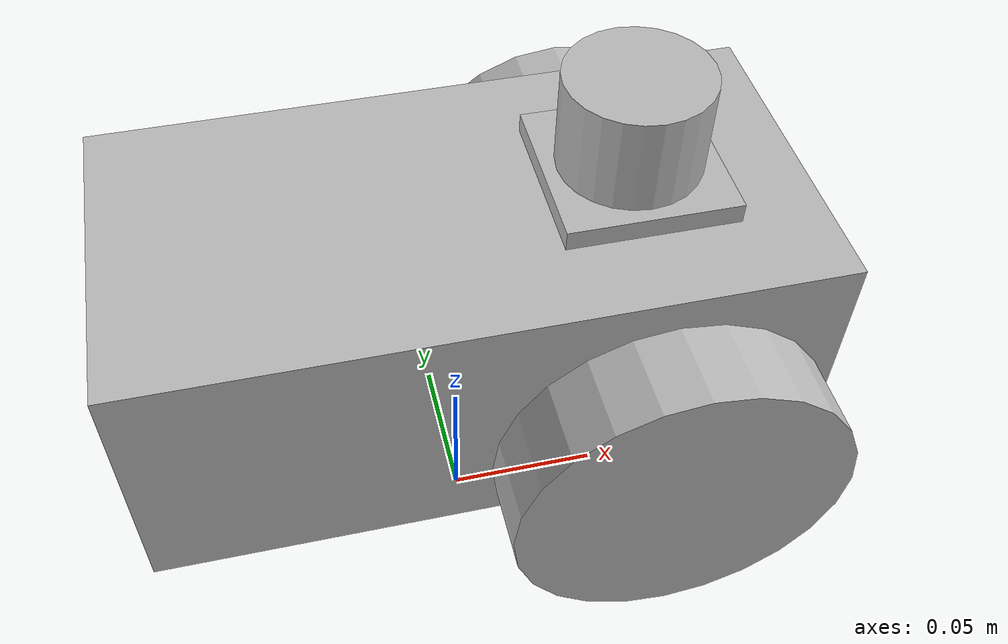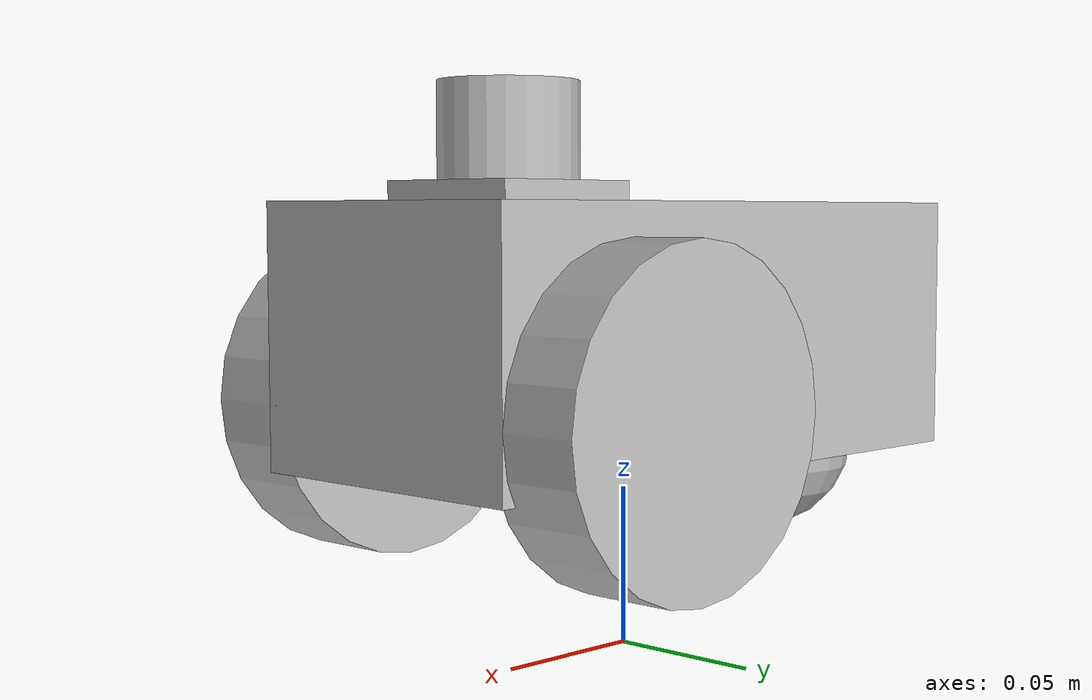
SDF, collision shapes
<?xml version='1.0'?>
<sdf version='1.4'>
	<model name="myrobot">
		<static>false</static>
		<link name='base_link'>
			<pose>0.0 0.0 0.1 0 0.0 0.0</pose>

			<visual name='visual'>
				<pose>0.0 0.0 0.0 0.0 0.0 0.0</pose>
				<geometry>
					<box>
						<size>0.2 0.1 0.08</size>
					</box>
				</geometry>
			</visual>

			<collision name='collision'>
				<geometry>
					<box>
						<size>0.2 0.1 0.08</size>
					</box>
				</geometry>
			</collision>

			<inertial>
				<mass>10.0</mass>
				<pose>0.0 0.0 0.04 0.0 0.0 0.0</pose>
				<inertia>
					<ixx>0.5</ixx>
					<iyy>1.0</iyy>
					<izz>0.1</izz>
				</inertia>
			</inertial>

			<visual name='caster_visual'>
				<pose> -0.07 0.0 -0.04 0.0 0.0 0.0</pose>
				<geometry>
					<sphere>
						<radius>0.03</radius>
					</sphere>
				</geometry>
			</visual>

			<collision name='caster_collision'>
				<pose>-0.07 0.0 -0.04 0.0 0.0 0.0</pose>
				<geometry>
					<sphere>
						<radius>.03</radius>
					</sphere>
				</geometry>

				<surface>
					<friction>
						<ode>
							<mu>0</mu>
							<mu2>0</mu2>
							<spli1>1.0</spli1>
							<spli2>1.0</spli2>
						</ode>
					</friction>
				</surface>
			</collision>
		</link>

		<link name="left_wheel_link">
			<pose>0.05 0.06 0.08 0.0 1.5707 1.5707</pose>
			<visual name="visual">
				<geometry>
					<cylinder>
						<radius>0.05</radius>
						<length>0.03</length>
					</cylinder>
				</geometry>
			</visual>

			<collision name="collision">
				<geometry>
					<cylinder>
						<radius>0.05</radius>
						<length>0.03</length>
					</cylinder>
				</geometry>
			</collision>
		</link>

		<link name="right_wheel_link">
			<pose>0.05 -0.06 0.08 0 1.5707 1.5707</pose>
			<visual name="visual">
				<geometry>
					<cylinder>
						<radius>0.05</radius>
						<length>0.03</length>
					</cylinder>
				</geometry>
			</visual>

			<collision name="collision">
				<geometry>
					<cylinder>
						<radius>0.05</radius>
						<length>0.03</length>
					</cylinder>
				</geometry>
			</collision>
		</link>

		<joint name="left_wheel_joint" type ="revolute">
			<pose>0.0 0.0 -0.03 0.0 0.0 0.0</pose>
			<parent>base_link</parent>
			<child>left_wheel_link</child>
			<axis>
				<xyz> 0 1 0</xyz>
			</axis>
		</joint>

		<joint name="right_wheel_joint" type ="revolute">
			<pose>0.0 0.0 0.03 0.0 0.0 0.0</pose>
			<parent>base_link</parent>
			<child>right_wheel_link</child>
			<axis>
				<xyz> 0 1 0</xyz>
			</axis>
		</joint>

		<include>
			<uri>model://hokuyo</uri>
			<pose>0.05 0.0 0.14 0.0 0.0 3.141</pose>
		</include>
		<joint name="hokyo_joint" type="fixed">
			<child>hokuyo::link</child>
			<parent>base_link</parent>
		</joint>

		<plugin name="differential_drive_controller" filename="libgazebo_ros_diff_drive.so">
			<updateRate>100</updateRate>
			<alwaysOn>true</alwaysOn>
			<!-- left these default because i have a suspision they will be reused by the actul turtlebot-->
			<!-- Name of left joint, defaults to 'left_joint' -->
			<leftJoint>left_wheel_joint</leftJoint>

			<!-- Name of right joint, defaults to 'right_joint' -->
			<rightJoint>right_wheel_joint</rightJoint>

			<!-- The distance from the center of one wheel to the other, in meters, defaults to 0.34 m -->
			<wheelSeparation>0.4</wheelSeparation>

			<!-- Diameter of the wheels, in meters, defaults to 0.15 m -->
			<wheelDiameter>0.2</wheelDiameter>

			<!-- Wheel acceleration, in rad/s^2, defaults to 0.0 rad/s^2 -->
			<wheelAcceleration>0.03</wheelAcceleration>

			<!-- Maximum torque which the wheels can produce, in Nm, defaults to 5 Nm -->
			<wheelTorque>0.5</wheelTorque>

			<!-- Topic to receive geometry_msgs/Twist message commands, defaults to `cmd_vel` -->
			<commandTopic>cmd_vel</commandTopic>

			<!-- Topic to publish nav_msgs/Odometry messages, defaults to `odom` -->
			<odometryTopic>odom</odometryTopic>

			<!-- Odometry frame, defaults to `odom` -->
			<odometryFrame>odom</odometryFrame>

			<!-- Robot frame to calculate odometry from, defaults to `base_footprint` -->
			<robotBaseFrame>base_link</robotBaseFrame>

			<!-- Odometry source, 0 for ENCODER, 1 for WORLD, defaults to WORLD -->
			<odometrySource>1</odometrySource>

			<!-- Set to true to publish transforms for the wheel links, defaults to false -->
			<publishWheelTF>true</publishWheelTF>

			<!-- Set to true to publish transforms for the odometry, defaults to true -->
			<publishOdom>true</publishOdom>

			<!-- Set to true to publish sensor_msgs/JointState on /joint_states for the wheel joints, defaults to false -->
			<publishWheelJointState>true</publishWheelJointState>

			<!-- Set to true to swap right and left wheels, defaults to true -->
			<legacyMode>false</legacyMode>
		</plugin>
	</model>
</sdf>

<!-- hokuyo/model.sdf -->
<sdf version="1.5">
  <model name="hokuyo">
    <pose>0 0 0.035 0 0 0</pose>
    <link name="link">
      <inertial>
        <mass>0.1</mass>
      </inertial>
      <visual name="visual">
        <geometry>
          <mesh>
            <uri>model://../model_source/models/hokuyo/meshes/hokuyo.dae</uri>
          </mesh>
        </geometry>
      </visual>
      <collision name="collision-base">
        <pose>0 0 -0.0145 0 0 0</pose>
        <geometry>
          <box>
            <size>0.05 0.05 0.041</size>
          </box>
        </geometry>
      </collision>
      <collision name="collision-top">
        <pose>0 0 0.0205 0 0 0</pose>
        <geometry>
          <cylinder>
            <radius>0.021</radius>
            <length>0.029</length>
          </cylinder>
        </geometry>
      </collision>
      <sensor name="laser" type="ray">
        <pose>0.01 0 0.0175 0 -0 0</pose>
        <ray>
          <scan>
            <horizontal>
              <samples>640</samples>
              <resolution>1</resolution>
              <min_angle>-2.26889</min_angle>
              <max_angle>2.268899</max_angle>
            </horizontal>
          </scan>
          <range>
            <min>0.08</min>
            <max>10</max>
            <resolution>0.01</resolution>
          </range>
        </ray>
        <plugin name="laser" filename="libRayPlugin.so" />
        <always_on>1</always_on>
        <update_rate>30</update_rate>
        <visualize>true</visualize>
      </sensor>
    </link>
  </model>
</sdf>
